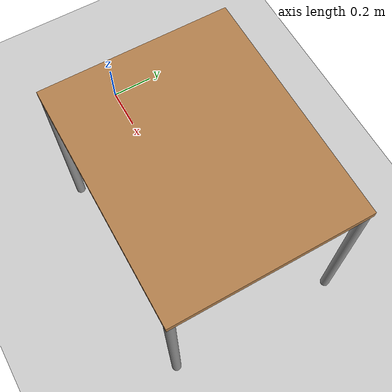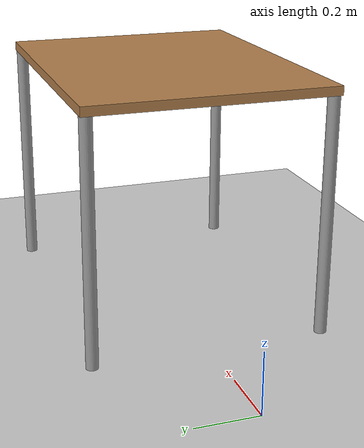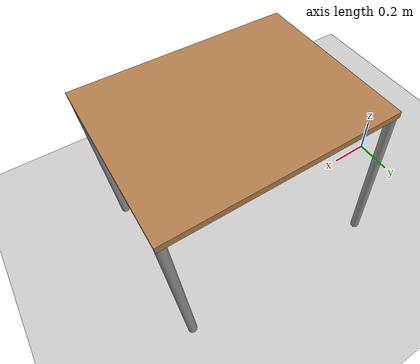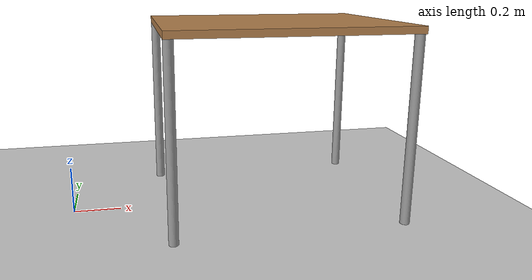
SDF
<sdf version="1.4">
 <world name="default">
  <physics type="ode">
   <gravity>0 0 -9.81</gravity>
   <ode>
    <solver><type>quick</type><iters>20</iters><sor>1.0</sor></solver>
    <constraints>
     <cfm>0.0</cfm>
     <erp>0.2</erp>
     <contact_max_correcting_vel>100.0</contact_max_correcting_vel>
     <contact_surface_layer>0.0</contact_surface_layer>
    </constraints>
   </ode>
   <real_time_update_rate>1000</real_time_update_rate>
   <max_step_size>0.001</max_step_size>
  </physics>
  <light type="directional" name="light1">
   <pose>-2 0 4 0 0 0</pose>
   <diffuse>1.0 1.0 1.0 1</diffuse>
   <specular>0.1 0.1 0.1 1</specular>
   <attenuation>
    <range>20</range>
    <constant>0.9</constant>
    <linear>0.01</linear>
    <quadratic>0.001</quadratic>
   </attenuation>
   <direction>0.2 0.0 -1.0</direction>
  </light>
  <include><uri>model://ground_plane</uri></include>
  <include><uri>model://table_0m8</uri><name>table1</name><pose>0.88 0 0 0 0 0</pose></include>
 </world>
</sdf>

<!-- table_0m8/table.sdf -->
<sdf version="1.4">
<model name='table'>
      <static>1</static>
      <link name='link'>
        <collision name='surface'>
          <pose>0.000000 0.000000 0.800000 0.000000 0.000000 0.000000</pose>
          <geometry>
            <box>
              <size>1.000000 0.800000 0.030000</size>
            </box>
          </geometry>
          <surface>
            <bounce/>
            <friction>
              <ode/>
            </friction>
            <contact>
              <ode/>
            </contact>
          </surface>
        </collision>
        <visual name='visual1'>
          <pose>0.000000 0.000000 0.800000 0.000000 0.000000 0.000000</pose>
          <geometry>
            <box>
              <size>1.000000 0.800000 0.030000</size>
            </box>
          </geometry>
          <material>
            <script>
              <uri>file://media/materials/scripts/gazebo.material</uri>
              <name>Gazebo/Wood</name>
            </script>
          </material>
        </visual>
        <collision name='front_left_leg'>
          <pose>0.480000 0.380000 0.400000 0.000000 0.000000 0.000000</pose>
          <geometry>
            <cylinder>
              <radius>0.020000</radius>
              <length>0.800000</length>
            </cylinder>
          </geometry>
          <surface>
            <bounce/>
            <friction>
              <ode/>
            </friction>
            <contact>
              <ode/>
            </contact>
          </surface>
        </collision>
        <visual name='front_left_leg'>
          <pose>0.480000 0.380000 0.400000 0.000000 0.000000 0.000000</pose>
          <geometry>
            <cylinder>
              <radius>0.020000</radius>
              <length>0.800000</length>
            </cylinder>
          </geometry>
          <material>
            <script>
              <uri>file://media/materials/scripts/gazebo.material</uri>
              <name>Gazebo/Grey</name>
            </script>
          </material>
        </visual>
        <collision name='front_right_leg'>
          <pose>0.480000 -0.380000 0.400000 0.000000 0.000000 0.000000</pose>
          <geometry>
            <cylinder>
              <radius>0.020000</radius>
              <length>0.800000</length>
            </cylinder>
          </geometry>
          <surface>
            <bounce/>
            <friction>
              <ode/>
            </friction>
            <contact>
              <ode/>
            </contact>
          </surface>
        </collision>
        <visual name='front_right_leg'>
          <pose>0.480000 -0.380000 0.400000 0.000000 0.000000 0.000000</pose>
          <geometry>
            <cylinder>
              <radius>0.020000</radius>
              <length>0.800000</length>
            </cylinder>
          </geometry>
          <material>
            <script>
              <uri>file://media/materials/scripts/gazebo.material</uri>
              <name>Gazebo/Grey</name>
            </script>
          </material>
        </visual>
        <collision name='back_right_leg'>
          <pose>-0.480000 -0.380000 0.400000 0.000000 0.000000 0.000000</pose>
          <geometry>
            <cylinder>
              <radius>0.020000</radius>
              <length>0.800000</length>
            </cylinder>
          </geometry>
          <surface>
            <bounce/>
            <friction>
              <ode/>
            </friction>
            <contact>
              <ode/>
            </contact>
          </surface>
        </collision>
        <visual name='back_right_leg'>
          <pose>-0.480000 -0.380000 0.400000 0.000000 0.000000 0.000000</pose>
          <geometry>
            <cylinder>
              <radius>0.020000</radius>
              <length>0.800000</length>
            </cylinder>
          </geometry>
          <material>
            <script>
              <uri>file://media/materials/scripts/gazebo.material</uri>
              <name>Gazebo/Grey</name>
            </script>
          </material>
        </visual>
        <collision name='back_left_leg'>
          <pose>-0.480000 0.380000 0.400000 0.000000 0.000000 0.000000</pose>
          <geometry>
            <cylinder>
              <radius>0.020000</radius>
              <length>0.800000</length>
            </cylinder>
          </geometry>
          <surface>
            <bounce/>
            <friction>
              <ode/>
            </friction>
            <contact>
              <ode/>
            </contact>
          </surface>
        </collision>
        <visual name='back_left_leg'>
          <pose>-0.480000 0.380000 0.400000 0.000000 0.000000 0.000000</pose>
          <geometry>
            <cylinder>
              <radius>0.020000</radius>
              <length>0.800000</length>
            </cylinder>
          </geometry>
          <material>
            <script>
              <uri>file://media/materials/scripts/gazebo.material</uri>
              <name>Gazebo/Grey</name>
            </script>
          </material>
        </visual>
        <velocity_decay>
          <linear>0.000000</linear>
          <angular>0.000000</angular>
        </velocity_decay>
        <self_collide>0</self_collide>
        <kinematic>0</kinematic>
        <gravity>1</gravity>
      </link>
    </model>
</sdf>
